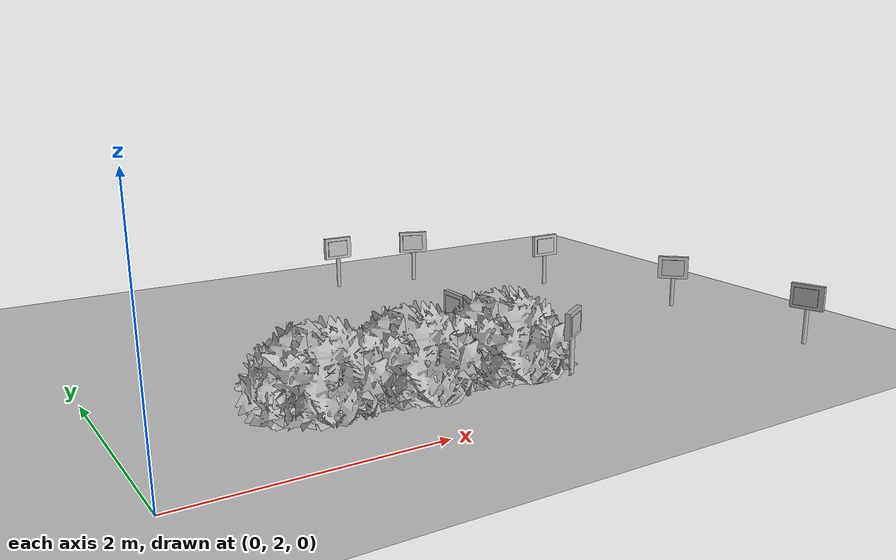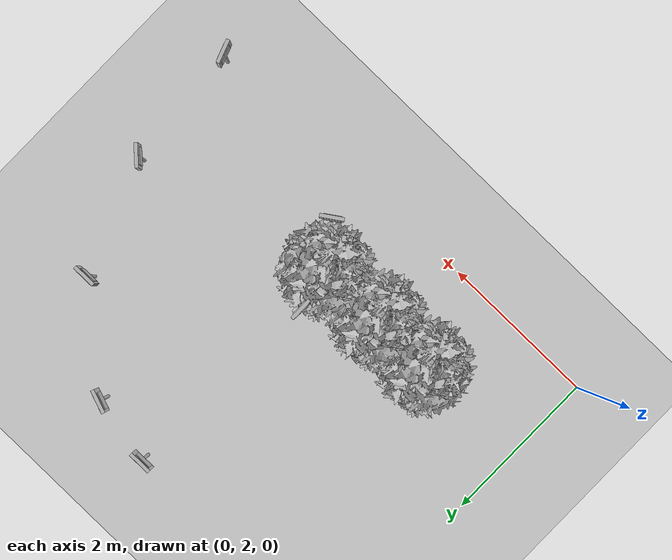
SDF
<sdf version="1.7">
 <world name="default">
  <model name="ground_plane">
   <static>1</static>
   <link name="link">
    <collision name="collision">
     <geometry><plane><normal>0 0 1</normal><size>100 100</size></plane></geometry>
     <surface>
      <contact><collide_bitmask>65535</collide_bitmask></contact>
      <friction><ode><mu>100</mu><mu2>50</mu2></ode></friction>
     </surface>
    </collision>
    <visual name="visual">
     <cast_shadows>0</cast_shadows>
     <geometry><plane><normal>0 0 1</normal><size>100 100</size></plane></geometry>
     <material>
      <script><uri>file://media/materials/scripts/gazebo.material</uri><name>Gazebo/Grey</name></script>
     </material>
    </visual>
   </link>
  </model>
  <model name="abbfre_6">
   <link name="link_0">
    <inertial>
     <mass>1</mass>
     <inertia>
      <ixx>0.166667</ixx>
      <ixy>0</ixy>
      <ixz>0</ixz>
      <iyy>0.166667</iyy>
      <iyz>0</iyz>
      <izz>0.166667</izz>
     </inertia>
    </inertial>
    <pose>0 0 -0 1.60917 -0 0</pose>
    <visual name="visual">
     <geometry><mesh><uri>model://abbfre/meshes/arbufres.obj</uri><scale>1 1 1</scale></mesh></geometry>
    </visual>
    <collision name="collision">
     <geometry><mesh><uri>model://abbfre/meshes/arbufres.obj</uri><scale>1 1 1</scale></mesh></geometry>
     <surface>
      <friction>
       <ode><mu>1</mu><mu2>1</mu2><fdir1>0 0 0</fdir1><slip1>0</slip1><slip2>0</slip2></ode>
       <torsional>
        <coefficient>1</coefficient>
        <patch_radius>0</patch_radius>
        <surface_radius>0</surface_radius>
        <use_patch_radius>1</use_patch_radius>
        <ode><slip>0</slip></ode>
       </torsional>
      </friction>
      <bounce><restitution_coefficient>0</restitution_coefficient><threshold>1e+06</threshold></bounce>
      <contact>
       <collide_without_contact>0</collide_without_contact>
       <collide_without_contact_bitmask>1</collide_without_contact_bitmask>
       <collide_bitmask>1</collide_bitmask>
       <ode>
        <soft_cfm>0</soft_cfm>
        <soft_erp>0.2</soft_erp>
        <kp>1e+13</kp>
        <kd>1</kd>
        <max_vel>0.01</max_vel>
        <min_depth>0</min_depth>
       </ode>
       <bullet>
        <split_impulse>1</split_impulse>
        <split_impulse_penetration_threshold>-0.01</split_impulse_penetration_threshold>
        <soft_cfm>0</soft_cfm>
        <soft_erp>0.2</soft_erp>
        <kp>1e+13</kp>
        <kd>1</kd>
       </bullet>
      </contact>
     </surface>
    </collision>
   </link>
   <static>1</static>
   <pose>2.3443 3.2131 0 0 -0 0</pose>
  </model>
  <model name="letrero_riego_II_0">
   <link name="link_0">
    <inertial>
     <mass>0.0543151</mass>
     <inertia>
      <ixx>4.90351e-06</ixx>
      <ixy>0</ixy>
      <ixz>0</ixz>
      <iyy>4.90351e-06</iyy>
      <iyz>0</iyz>
      <izz>1.12837e-07</izz>
     </inertia>
    </inertial>
    <pose>0.002515 0.005109 0.153562 0 -0 0</pose>
    <visual name="visual">
     <geometry><cylinder><radius>0.0203836</radius><length>0.327243</length></cylinder></geometry>
     <material>
      <lighting>1</lighting>
      <script>
       <uri>model://letrero_riego_II/madera/scripts</uri>
       <uri>model://letrero_riego_II/madera/textures</uri>
       <name>textur/madera</name>
      </script>
      <shader type="pixel"/>
      <emissive>0 0 0 1</emissive>
     </material>
    </visual>
    <collision name="collision">
     <geometry><cylinder><radius>0.020384</radius><length>0.327243</length></cylinder></geometry>
     <surface>
      <friction>
       <ode><mu>1</mu><mu2>1</mu2><fdir1>0 0 0</fdir1><slip1>0</slip1><slip2>0</slip2></ode>
       <torsional>
        <coefficient>1</coefficient>
        <patch_radius>0</patch_radius>
        <surface_radius>0</surface_radius>
        <use_patch_radius>1</use_patch_radius>
        <ode><slip>0</slip></ode>
       </torsional>
      </friction>
      <bounce><restitution_coefficient>0</restitution_coefficient><threshold>1e+06</threshold></bounce>
      <contact>
       <collide_without_contact>0</collide_without_contact>
       <collide_without_contact_bitmask>1</collide_without_contact_bitmask>
       <collide_bitmask>1</collide_bitmask>
       <ode>
        <soft_cfm>0</soft_cfm>
        <soft_erp>0.2</soft_erp>
        <kp>1e+13</kp>
        <kd>1</kd>
        <max_vel>0.01</max_vel>
        <min_depth>0</min_depth>
       </ode>
       <bullet>
        <split_impulse>1</split_impulse>
        <split_impulse_penetration_threshold>-0.01</split_impulse_penetration_threshold>
        <soft_cfm>0</soft_cfm>
        <soft_erp>0.2</soft_erp>
        <kp>1e+13</kp>
        <kd>1</kd>
       </bullet>
      </contact>
     </surface>
    </collision>
   </link>
   <link name="link_1">
    <inertial>
     <mass>0.00299633</mass>
     <inertia>
      <ixx>1.27855e-05</ixx>
      <ixy>0</ixy>
      <ixz>0</ixz>
      <iyy>3.42923e-05</iyy>
      <iyz>0</iyz>
      <izz>2.25402e-05</izz>
     </inertia>
    </inertial>
    <pose>-0.001542 0.002452 0.422031 0 -0 0</pose>
    <visual name="visual">
     <geometry><box><size>0.296988 0.04549 0.221665</size></box></geometry>
     <material>
      <lighting>1</lighting>
      <script>
       <uri>model://letrero_riego_II/madera/scripts</uri>
       <uri>model://letrero_riego_II/madera/textures</uri>
       <name>textur/madera</name>
      </script>
      <shader type="pixel"/>
      <emissive>0 0 0 1</emissive>
     </material>
    </visual>
    <collision name="collision">
     <geometry><box><size>0.296988 0.04549 0.221665</size></box></geometry>
     <surface>
      <friction>
       <ode><mu>1</mu><mu2>1</mu2><fdir1>0 0 0</fdir1><slip1>0</slip1><slip2>0</slip2></ode>
       <torsional>
        <coefficient>1</coefficient>
        <patch_radius>0</patch_radius>
        <surface_radius>0</surface_radius>
        <use_patch_radius>1</use_patch_radius>
        <ode><slip>0</slip></ode>
       </torsional>
      </friction>
      <bounce><restitution_coefficient>0</restitution_coefficient><threshold>1e+06</threshold></bounce>
      <contact>
       <collide_without_contact>0</collide_without_contact>
       <collide_without_contact_bitmask>1</collide_without_contact_bitmask>
       <collide_bitmask>1</collide_bitmask>
       <ode>
        <soft_cfm>0</soft_cfm>
        <soft_erp>0.2</soft_erp>
        <kp>1e+13</kp>
        <kd>1</kd>
        <max_vel>0.01</max_vel>
        <min_depth>0</min_depth>
       </ode>
       <bullet>
        <split_impulse>1</split_impulse>
        <split_impulse_penetration_threshold>-0.01</split_impulse_penetration_threshold>
        <soft_cfm>0</soft_cfm>
        <soft_erp>0.2</soft_erp>
        <kp>1e+13</kp>
        <kd>1</kd>
       </bullet>
      </contact>
     </surface>
    </collision>
   </link>
   <link name="link_2">
    <inertial>
     <mass>0.00173577</mass>
     <inertia>
      <ixx>4.23206e-06</ixx>
      <ixy>0</ixy>
      <ixz>0</ixz>
      <iyy>1.03921e-05</iyy>
      <iyz>0</iyz>
      <izz>7.37287e-06</izz>
     </inertia>
    </inertial>
    <pose>-0.010225 0.002657 0.421501 0 -0 0</pose>
    <visual name="visual">
     <geometry><box><size>0.216284 0.064749 0.15832</size></box></geometry>
     <material>
      <lighting>1</lighting>
      <script>
       <uri>model://letrero_riego_II/materials/scripts</uri>
       <uri>model://letrero_riego_II/materials/textures</uri>
       <name>textur/sisrie</name>
      </script>
      <shader type="pixel"/>
      <emissive>0 0 0 1</emissive>
     </material>
    </visual>
    <collision name="collision">
     <geometry><box><size>0.216284 0.064749 0.15832</size></box></geometry>
     <surface>
      <friction>
       <ode><mu>1</mu><mu2>1</mu2><fdir1>0 0 0</fdir1><slip1>0</slip1><slip2>0</slip2></ode>
       <torsional>
        <coefficient>1</coefficient>
        <patch_radius>0</patch_radius>
        <surface_radius>0</surface_radius>
        <use_patch_radius>1</use_patch_radius>
        <ode><slip>0</slip></ode>
       </torsional>
      </friction>
      <bounce><restitution_coefficient>0</restitution_coefficient><threshold>1e+06</threshold></bounce>
      <contact>
       <collide_without_contact>0</collide_without_contact>
       <collide_without_contact_bitmask>1</collide_without_contact_bitmask>
       <collide_bitmask>1</collide_bitmask>
       <ode>
        <soft_cfm>0</soft_cfm>
        <soft_erp>0.2</soft_erp>
        <kp>1e+13</kp>
        <kd>1</kd>
        <max_vel>0.01</max_vel>
        <min_depth>0</min_depth>
       </ode>
       <bullet>
        <split_impulse>1</split_impulse>
        <split_impulse_penetration_threshold>-0.01</split_impulse_penetration_threshold>
        <soft_cfm>0</soft_cfm>
        <soft_erp>0.2</soft_erp>
        <kp>1e+13</kp>
        <kd>1</kd>
       </bullet>
      </contact>
     </surface>
    </collision>
   </link>
   <joint name="link_0_JOINT_1" type="fixed">
    <parent>link_0</parent>
    <child>link_1</child>
    <physics>
     <ode><limit><cfm>0</cfm><erp>0.2</erp></limit><suspension><cfm>0</cfm><erp>0.2</erp></suspension></ode>
    </physics>
   </joint>
   <joint name="link_0_JOINT_2" type="fixed">
    <parent>link_0</parent>
    <child>link_2</child>
    <physics>
     <ode><limit><cfm>0</cfm><erp>0.2</erp></limit><suspension><cfm>0</cfm><erp>0.2</erp></suspension></ode>
    </physics>
   </joint>
   <static>1</static>
   <pose>3.53509 2.61396 0 0 -0 0.590552</pose>
  </model>
  <model name="letrero_cheems">
   <link name="link_0">
    <inertial>
     <mass>0.00543151</mass>
     <inertia>
      <ixx>4.90351e-06</ixx>
      <ixy>0</ixy>
      <ixz>0</ixz>
      <iyy>4.90351e-06</iyy>
      <iyz>0</iyz>
      <izz>1.12837e-07</izz>
     </inertia>
    </inertial>
    <pose>0.002372 -0.000902 -0.178803 0 -0 0</pose>
    <visual name="visual">
     <geometry><cylinder><radius>0.0203836</radius><length>0.327243</length></cylinder></geometry>
     <material>
      <lighting>1</lighting>
      <script>
       <uri>model://letrero_cheems/madera/scripts</uri>
       <uri>model://letrero_cheems/madera/textures</uri>
       <name>textur/madera</name>
      </script>
      <shader type="pixel"/>
      <emissive>0 0 0 1</emissive>
     </material>
    </visual>
    <collision name="collision">
     <geometry><cylinder><radius>0.020384</radius><length>0.327243</length></cylinder></geometry>
     <surface>
      <friction>
       <ode><mu>1</mu><mu2>1</mu2><fdir1>0 0 0</fdir1><slip1>0</slip1><slip2>0</slip2></ode>
       <torsional>
        <coefficient>1</coefficient>
        <patch_radius>0</patch_radius>
        <surface_radius>0</surface_radius>
        <use_patch_radius>1</use_patch_radius>
        <ode><slip>0</slip></ode>
       </torsional>
      </friction>
      <bounce><restitution_coefficient>0</restitution_coefficient><threshold>1e+06</threshold></bounce>
      <contact>
       <collide_without_contact>0</collide_without_contact>
       <collide_without_contact_bitmask>1</collide_without_contact_bitmask>
       <collide_bitmask>1</collide_bitmask>
       <ode>
        <soft_cfm>0</soft_cfm>
        <soft_erp>0.2</soft_erp>
        <kp>1e+13</kp>
        <kd>1</kd>
        <max_vel>0.01</max_vel>
        <min_depth>0</min_depth>
       </ode>
       <bullet>
        <split_impulse>1</split_impulse>
        <split_impulse_penetration_threshold>-0.01</split_impulse_penetration_threshold>
        <soft_cfm>0</soft_cfm>
        <soft_erp>0.2</soft_erp>
        <kp>1e+13</kp>
        <kd>1</kd>
       </bullet>
      </contact>
     </surface>
    </collision>
   </link>
   <link name="link_1">
    <inertial>
     <mass>0.00299633</mass>
     <inertia>
      <ixx>1.27855e-05</ixx>
      <ixy>0</ixy>
      <ixz>0</ixz>
      <iyy>3.42923e-05</iyy>
      <iyz>0</iyz>
      <izz>2.25402e-05</izz>
     </inertia>
    </inertial>
    <pose>-0.001685 -0.003559 0.089666 0 -0 0</pose>
    <visual name="visual">
     <geometry><box><size>0.296988 0.04549 0.221665</size></box></geometry>
     <material>
      <lighting>1</lighting>
      <script>
       <uri>model://letrero_cheems/madera/scripts</uri>
       <uri>model://letrero_cheems/madera/textures</uri>
       <name>textur/madera</name>
      </script>
      <shader type="pixel"/>
      <emissive>0 0 0 1</emissive>
     </material>
    </visual>
    <collision name="collision">
     <geometry><box><size>0.296988 0.04549 0.221665</size></box></geometry>
     <surface>
      <friction>
       <ode><mu>1</mu><mu2>1</mu2><fdir1>0 0 0</fdir1><slip1>0</slip1><slip2>0</slip2></ode>
       <torsional>
        <coefficient>1</coefficient>
        <patch_radius>0</patch_radius>
        <surface_radius>0</surface_radius>
        <use_patch_radius>1</use_patch_radius>
        <ode><slip>0</slip></ode>
       </torsional>
      </friction>
      <bounce><restitution_coefficient>0</restitution_coefficient><threshold>1e+06</threshold></bounce>
      <contact>
       <collide_without_contact>0</collide_without_contact>
       <collide_without_contact_bitmask>1</collide_without_contact_bitmask>
       <collide_bitmask>1</collide_bitmask>
       <ode>
        <soft_cfm>0</soft_cfm>
        <soft_erp>0.2</soft_erp>
        <kp>1e+13</kp>
        <kd>1</kd>
        <max_vel>0.01</max_vel>
        <min_depth>0</min_depth>
       </ode>
       <bullet>
        <split_impulse>1</split_impulse>
        <split_impulse_penetration_threshold>-0.01</split_impulse_penetration_threshold>
        <soft_cfm>0</soft_cfm>
        <soft_erp>0.2</soft_erp>
        <kp>1e+13</kp>
        <kd>1</kd>
       </bullet>
      </contact>
     </surface>
    </collision>
   </link>
   <link name="link_2">
    <inertial>
     <mass>0.00219695</mass>
     <inertia>
      <ixx>5.34209e-06</ixx>
      <ixy>0</ixy>
      <ixz>0</ixz>
      <iyy>1.31531e-05</iyy>
      <iyz>0</iyz>
      <izz>9.31738e-06</izz>
     </inertia>
    </inertial>
    <pose>-0.001275 -0.005928 0.089136 0 -0 0</pose>
    <visual name="visual">
     <geometry><box><size>0.216284 0.06414 0.15832</size></box></geometry>
     <material>
      <lighting>1</lighting>
      <script>
       <uri>model://letrero_cheems/materials/scripts</uri>
       <uri>model://letrero_cheems/materials/textures</uri>
       <name>textur/cheems</name>
      </script>
      <shader type="pixel"/>
      <emissive>0 0 0 1</emissive>
     </material>
    </visual>
    <collision name="collision">
     <geometry><box><size>0.216284 0.06414 0.15832</size></box></geometry>
     <surface>
      <friction>
       <ode><mu>1</mu><mu2>1</mu2><fdir1>0 0 0</fdir1><slip1>0</slip1><slip2>0</slip2></ode>
       <torsional>
        <coefficient>1</coefficient>
        <patch_radius>0</patch_radius>
        <surface_radius>0</surface_radius>
        <use_patch_radius>1</use_patch_radius>
        <ode><slip>0</slip></ode>
       </torsional>
      </friction>
      <bounce><restitution_coefficient>0</restitution_coefficient><threshold>1e+06</threshold></bounce>
      <contact>
       <collide_without_contact>0</collide_without_contact>
       <collide_without_contact_bitmask>1</collide_without_contact_bitmask>
       <collide_bitmask>1</collide_bitmask>
       <ode>
        <soft_cfm>0</soft_cfm>
        <soft_erp>0.2</soft_erp>
        <kp>1e+13</kp>
        <kd>1</kd>
        <max_vel>0.01</max_vel>
        <min_depth>0</min_depth>
       </ode>
       <bullet>
        <split_impulse>1</split_impulse>
        <split_impulse_penetration_threshold>-0.01</split_impulse_penetration_threshold>
        <soft_cfm>0</soft_cfm>
        <soft_erp>0.2</soft_erp>
        <kp>1e+13</kp>
        <kd>1</kd>
       </bullet>
      </contact>
     </surface>
    </collision>
   </link>
   <joint name="link_0_JOINT_1" type="fixed">
    <parent>link_0</parent>
    <child>link_1</child>
    <physics>
     <ode><limit><cfm>0</cfm><erp>0.2</erp></limit><suspension><cfm>0</cfm><erp>0.2</erp></suspension></ode>
    </physics>
   </joint>
   <joint name="link_0_JOINT_2" type="fixed">
    <parent>link_0</parent>
    <child>link_2</child>
    <physics>
     <ode><limit><cfm>0</cfm><erp>0.2</erp></limit><suspension><cfm>0</cfm><erp>0.2</erp></suspension></ode>
    </physics>
   </joint>
   <static>1</static>
   <pose>5.66596 3.67627 0.298605 -0.001182 -0.001125 -0.761042</pose>
  </model>
  <model name="letrero_riego_II">
   <link name="link_0">
    <inertial>
     <mass>0.0543151</mass>
     <inertia>
      <ixx>4.90351e-06</ixx>
      <ixy>0</ixy>
      <ixz>0</ixz>
      <iyy>4.90351e-06</iyy>
      <iyz>0</iyz>
      <izz>1.12837e-07</izz>
     </inertia>
    </inertial>
    <pose>0.002515 0.005109 0.153562 0 -0 0</pose>
    <visual name="visual">
     <geometry><cylinder><radius>0.0203836</radius><length>0.327243</length></cylinder></geometry>
     <material>
      <lighting>1</lighting>
      <script>
       <uri>model://letrero_riego_II/madera/scripts</uri>
       <uri>model://letrero_riego_II/madera/textures</uri>
       <name>textur/madera</name>
      </script>
      <shader type="pixel"/>
      <emissive>0 0 0 1</emissive>
     </material>
    </visual>
    <collision name="collision">
     <geometry><cylinder><radius>0.020384</radius><length>0.327243</length></cylinder></geometry>
     <surface>
      <friction>
       <ode><mu>1</mu><mu2>1</mu2><fdir1>0 0 0</fdir1><slip1>0</slip1><slip2>0</slip2></ode>
       <torsional>
        <coefficient>1</coefficient>
        <patch_radius>0</patch_radius>
        <surface_radius>0</surface_radius>
        <use_patch_radius>1</use_patch_radius>
        <ode><slip>0</slip></ode>
       </torsional>
      </friction>
      <bounce><restitution_coefficient>0</restitution_coefficient><threshold>1e+06</threshold></bounce>
      <contact>
       <collide_without_contact>0</collide_without_contact>
       <collide_without_contact_bitmask>1</collide_without_contact_bitmask>
       <collide_bitmask>1</collide_bitmask>
       <ode>
        <soft_cfm>0</soft_cfm>
        <soft_erp>0.2</soft_erp>
        <kp>1e+13</kp>
        <kd>1</kd>
        <max_vel>0.01</max_vel>
        <min_depth>0</min_depth>
       </ode>
       <bullet>
        <split_impulse>1</split_impulse>
        <split_impulse_penetration_threshold>-0.01</split_impulse_penetration_threshold>
        <soft_cfm>0</soft_cfm>
        <soft_erp>0.2</soft_erp>
        <kp>1e+13</kp>
        <kd>1</kd>
       </bullet>
      </contact>
     </surface>
    </collision>
   </link>
   <link name="link_1">
    <inertial>
     <mass>0.00299633</mass>
     <inertia>
      <ixx>1.27855e-05</ixx>
      <ixy>0</ixy>
      <ixz>0</ixz>
      <iyy>3.42923e-05</iyy>
      <iyz>0</iyz>
      <izz>2.25402e-05</izz>
     </inertia>
    </inertial>
    <pose>-0.001542 0.002452 0.422031 0 -0 0</pose>
    <visual name="visual">
     <geometry><box><size>0.296988 0.04549 0.221665</size></box></geometry>
     <material>
      <lighting>1</lighting>
      <script>
       <uri>model://letrero_riego_II/madera/scripts</uri>
       <uri>model://letrero_riego_II/madera/textures</uri>
       <name>textur/madera</name>
      </script>
      <shader type="pixel"/>
      <emissive>0 0 0 1</emissive>
     </material>
    </visual>
    <collision name="collision">
     <geometry><box><size>0.296988 0.04549 0.221665</size></box></geometry>
     <surface>
      <friction>
       <ode><mu>1</mu><mu2>1</mu2><fdir1>0 0 0</fdir1><slip1>0</slip1><slip2>0</slip2></ode>
       <torsional>
        <coefficient>1</coefficient>
        <patch_radius>0</patch_radius>
        <surface_radius>0</surface_radius>
        <use_patch_radius>1</use_patch_radius>
        <ode><slip>0</slip></ode>
       </torsional>
      </friction>
      <bounce><restitution_coefficient>0</restitution_coefficient><threshold>1e+06</threshold></bounce>
      <contact>
       <collide_without_contact>0</collide_without_contact>
       <collide_without_contact_bitmask>1</collide_without_contact_bitmask>
       <collide_bitmask>1</collide_bitmask>
       <ode>
        <soft_cfm>0</soft_cfm>
        <soft_erp>0.2</soft_erp>
        <kp>1e+13</kp>
        <kd>1</kd>
        <max_vel>0.01</max_vel>
        <min_depth>0</min_depth>
       </ode>
       <bullet>
        <split_impulse>1</split_impulse>
        <split_impulse_penetration_threshold>-0.01</split_impulse_penetration_threshold>
        <soft_cfm>0</soft_cfm>
        <soft_erp>0.2</soft_erp>
        <kp>1e+13</kp>
        <kd>1</kd>
       </bullet>
      </contact>
     </surface>
    </collision>
   </link>
   <link name="link_2">
    <inertial>
     <mass>0.00173577</mass>
     <inertia>
      <ixx>4.23206e-06</ixx>
      <ixy>0</ixy>
      <ixz>0</ixz>
      <iyy>1.03921e-05</iyy>
      <iyz>0</iyz>
      <izz>7.37287e-06</izz>
     </inertia>
    </inertial>
    <pose>-0.010225 0.002657 0.421501 0 -0 0</pose>
    <visual name="visual">
     <geometry><box><size>0.216284 0.064749 0.15832</size></box></geometry>
     <material>
      <lighting>1</lighting>
      <script>
       <uri>model://letrero_riego_II/materials/scripts</uri>
       <uri>model://letrero_riego_II/materials/textures</uri>
       <name>textur/sisrie</name>
      </script>
      <shader type="pixel"/>
      <emissive>0 0 0 1</emissive>
     </material>
    </visual>
    <collision name="collision">
     <geometry><box><size>0.216284 0.064749 0.15832</size></box></geometry>
     <surface>
      <friction>
       <ode><mu>1</mu><mu2>1</mu2><fdir1>0 0 0</fdir1><slip1>0</slip1><slip2>0</slip2></ode>
       <torsional>
        <coefficient>1</coefficient>
        <patch_radius>0</patch_radius>
        <surface_radius>0</surface_radius>
        <use_patch_radius>1</use_patch_radius>
        <ode><slip>0</slip></ode>
       </torsional>
      </friction>
      <bounce><restitution_coefficient>0</restitution_coefficient><threshold>1e+06</threshold></bounce>
      <contact>
       <collide_without_contact>0</collide_without_contact>
       <collide_without_contact_bitmask>1</collide_without_contact_bitmask>
       <collide_bitmask>1</collide_bitmask>
       <ode>
        <soft_cfm>0</soft_cfm>
        <soft_erp>0.2</soft_erp>
        <kp>1e+13</kp>
        <kd>1</kd>
        <max_vel>0.01</max_vel>
        <min_depth>0</min_depth>
       </ode>
       <bullet>
        <split_impulse>1</split_impulse>
        <split_impulse_penetration_threshold>-0.01</split_impulse_penetration_threshold>
        <soft_cfm>0</soft_cfm>
        <soft_erp>0.2</soft_erp>
        <kp>1e+13</kp>
        <kd>1</kd>
       </bullet>
      </contact>
     </surface>
    </collision>
   </link>
   <joint name="link_0_JOINT_1" type="fixed">
    <parent>link_0</parent>
    <child>link_1</child>
    <physics>
     <ode><limit><cfm>0</cfm><erp>0.2</erp></limit><suspension><cfm>0</cfm><erp>0.2</erp></suspension></ode>
    </physics>
   </joint>
   <joint name="link_0_JOINT_2" type="fixed">
    <parent>link_0</parent>
    <child>link_2</child>
    <physics>
     <ode><limit><cfm>0</cfm><erp>0.2</erp></limit><suspension><cfm>0</cfm><erp>0.2</erp></suspension></ode>
    </physics>
   </joint>
   <static>1</static>
   <pose>5.11582 5.08948 0 0 -0 0</pose>
  </model>
  <model name="letrero_riego_0">
   <link name="link_0">
    <inertial>
     <mass>0.0543151</mass>
     <inertia>
      <ixx>4.90351e-06</ixx>
      <ixy>0</ixy>
      <ixz>0</ixz>
      <iyy>4.90351e-06</iyy>
      <iyz>0</iyz>
      <izz>1.12837e-07</izz>
     </inertia>
    </inertial>
    <pose>0.002515 0.005109 0.153562 0 -0 0</pose>
    <visual name="visual">
     <geometry><cylinder><radius>0.0203836</radius><length>0.327243</length></cylinder></geometry>
     <material>
      <lighting>1</lighting>
      <script>
       <uri>model://letrero_riego/madera/scripts</uri>
       <uri>model://letrero_riego/madera/textures</uri>
       <name>textur/madera</name>
      </script>
      <shader type="pixel"/>
      <emissive>0 0 0 1</emissive>
     </material>
    </visual>
    <collision name="collision">
     <geometry><cylinder><radius>0.020384</radius><length>0.327243</length></cylinder></geometry>
     <surface>
      <friction>
       <ode><mu>1</mu><mu2>1</mu2><fdir1>0 0 0</fdir1><slip1>0</slip1><slip2>0</slip2></ode>
       <torsional>
        <coefficient>1</coefficient>
        <patch_radius>0</patch_radius>
        <surface_radius>0</surface_radius>
        <use_patch_radius>1</use_patch_radius>
        <ode><slip>0</slip></ode>
       </torsional>
      </friction>
      <bounce><restitution_coefficient>0</restitution_coefficient><threshold>1e+06</threshold></bounce>
      <contact>
       <collide_without_contact>0</collide_without_contact>
       <collide_without_contact_bitmask>1</collide_without_contact_bitmask>
       <collide_bitmask>1</collide_bitmask>
       <ode>
        <soft_cfm>0</soft_cfm>
        <soft_erp>0.2</soft_erp>
        <kp>1e+13</kp>
        <kd>1</kd>
        <max_vel>0.01</max_vel>
        <min_depth>0</min_depth>
       </ode>
       <bullet>
        <split_impulse>1</split_impulse>
        <split_impulse_penetration_threshold>-0.01</split_impulse_penetration_threshold>
        <soft_cfm>0</soft_cfm>
        <soft_erp>0.2</soft_erp>
        <kp>1e+13</kp>
        <kd>1</kd>
       </bullet>
      </contact>
     </surface>
    </collision>
   </link>
   <link name="link_1">
    <inertial>
     <mass>0.00299633</mass>
     <inertia>
      <ixx>1.27855e-05</ixx>
      <ixy>0</ixy>
      <ixz>0</ixz>
      <iyy>3.42923e-05</iyy>
      <iyz>0</iyz>
      <izz>2.25402e-05</izz>
     </inertia>
    </inertial>
    <pose>-0.001542 0.002452 0.422031 0 -0 0</pose>
    <visual name="visual">
     <geometry><box><size>0.296988 0.04549 0.221665</size></box></geometry>
     <material>
      <lighting>1</lighting>
      <script>
       <uri>model://letrero_riego/madera/scripts</uri>
       <uri>model://letrero_riego/madera/textures</uri>
       <name>textur/madera</name>
      </script>
      <shader type="pixel"/>
      <emissive>0 0 0 1</emissive>
     </material>
    </visual>
    <collision name="collision">
     <geometry><box><size>0.296988 0.04549 0.221665</size></box></geometry>
     <surface>
      <friction>
       <ode><mu>1</mu><mu2>1</mu2><fdir1>0 0 0</fdir1><slip1>0</slip1><slip2>0</slip2></ode>
       <torsional>
        <coefficient>1</coefficient>
        <patch_radius>0</patch_radius>
        <surface_radius>0</surface_radius>
        <use_patch_radius>1</use_patch_radius>
        <ode><slip>0</slip></ode>
       </torsional>
      </friction>
      <bounce><restitution_coefficient>0</restitution_coefficient><threshold>1e+06</threshold></bounce>
      <contact>
       <collide_without_contact>0</collide_without_contact>
       <collide_without_contact_bitmask>1</collide_without_contact_bitmask>
       <collide_bitmask>1</collide_bitmask>
       <ode>
        <soft_cfm>0</soft_cfm>
        <soft_erp>0.2</soft_erp>
        <kp>1e+13</kp>
        <kd>1</kd>
        <max_vel>0.01</max_vel>
        <min_depth>0</min_depth>
       </ode>
       <bullet>
        <split_impulse>1</split_impulse>
        <split_impulse_penetration_threshold>-0.01</split_impulse_penetration_threshold>
        <soft_cfm>0</soft_cfm>
        <soft_erp>0.2</soft_erp>
        <kp>1e+13</kp>
        <kd>1</kd>
       </bullet>
      </contact>
     </surface>
    </collision>
   </link>
   <link name="link_2">
    <inertial>
     <mass>0.00173577</mass>
     <inertia>
      <ixx>4.23206e-06</ixx>
      <ixy>0</ixy>
      <ixz>0</ixz>
      <iyy>1.03921e-05</iyy>
      <iyz>0</iyz>
      <izz>7.37287e-06</izz>
     </inertia>
    </inertial>
    <pose>-0.010225 0.002657 0.421501 0 -0 0</pose>
    <visual name="visual">
     <geometry><box><size>0.216284 0.064749 0.15832</size></box></geometry>
     <material>
      <lighting>1</lighting>
      <script>
       <uri>model://letrero_riego/materials/scripts</uri>
       <uri>model://letrero_riego/materials/textures</uri>
       <name>textur/riego</name>
      </script>
      <shader type="pixel"/>
      <emissive>0 0 0 1</emissive>
     </material>
    </visual>
    <collision name="collision">
     <geometry><box><size>0.216284 0.064749 0.15832</size></box></geometry>
     <surface>
      <friction>
       <ode><mu>1</mu><mu2>1</mu2><fdir1>0 0 0</fdir1><slip1>0</slip1><slip2>0</slip2></ode>
       <torsional>
        <coefficient>1</coefficient>
        <patch_radius>0</patch_radius>
        <surface_radius>0</surface_radius>
        <use_patch_radius>1</use_patch_radius>
        <ode><slip>0</slip></ode>
       </torsional>
      </friction>
      <bounce><restitution_coefficient>0</restitution_coefficient><threshold>1e+06</threshold></bounce>
      <contact>
       <collide_without_contact>0</collide_without_contact>
       <collide_without_contact_bitmask>1</collide_without_contact_bitmask>
       <collide_bitmask>1</collide_bitmask>
       <ode>
        <soft_cfm>0</soft_cfm>
        <soft_erp>0.2</soft_erp>
        <kp>1e+13</kp>
        <kd>1</kd>
        <max_vel>0.01</max_vel>
        <min_depth>0</min_depth>
       </ode>
       <bullet>
        <split_impulse>1</split_impulse>
        <split_impulse_penetration_threshold>-0.01</split_impulse_penetration_threshold>
        <soft_cfm>0</soft_cfm>
        <soft_erp>0.2</soft_erp>
        <kp>1e+13</kp>
        <kd>1</kd>
       </bullet>
      </contact>
     </surface>
    </collision>
   </link>
   <joint name="link_0_JOINT_1" type="fixed">
    <parent>link_0</parent>
    <child>link_1</child>
    <physics>
     <ode><limit><cfm>0</cfm><erp>0.2</erp></limit><suspension><cfm>0</cfm><erp>0.2</erp></suspension></ode>
    </physics>
   </joint>
   <joint name="link_0_JOINT_2" type="fixed">
    <parent>link_0</parent>
    <child>link_2</child>
    <physics>
     <ode><limit><cfm>0</cfm><erp>0.2</erp></limit><suspension><cfm>0</cfm><erp>0.2</erp></suspension></ode>
    </physics>
   </joint>
   <static>1</static>
   <pose>5.76834 2.11439 0 0 0 -1.22534</pose>
  </model>
  <model name="letrero_pajaro_1">
   <link name="link_0">
    <inertial>
     <mass>0.0543151</mass>
     <inertia>
      <ixx>4.90351e-06</ixx>
      <ixy>0</ixy>
      <ixz>0</ixz>
      <iyy>4.90351e-06</iyy>
      <iyz>0</iyz>
      <izz>1.12837e-07</izz>
     </inertia>
    </inertial>
    <pose>0.002515 0.005109 0.153562 0 -0 0</pose>
    <visual name="visual">
     <geometry><cylinder><radius>0.0203836</radius><length>0.327243</length></cylinder></geometry>
     <material>
      <lighting>1</lighting>
      <script>
       <uri>model://letrero_pajaro/madera/scripts</uri>
       <uri>model://letrero_pajaro/madera/textures</uri>
       <name>textur/madera</name>
      </script>
      <shader type="pixel"/>
      <emissive>0 0 0 1</emissive>
     </material>
    </visual>
    <collision name="collision">
     <geometry><cylinder><radius>0.020384</radius><length>0.327243</length></cylinder></geometry>
     <surface>
      <friction>
       <ode><mu>1</mu><mu2>1</mu2><fdir1>0 0 0</fdir1><slip1>0</slip1><slip2>0</slip2></ode>
       <torsional>
        <coefficient>1</coefficient>
        <patch_radius>0</patch_radius>
        <surface_radius>0</surface_radius>
        <use_patch_radius>1</use_patch_radius>
        <ode><slip>0</slip></ode>
       </torsional>
      </friction>
      <bounce><restitution_coefficient>0</restitution_coefficient><threshold>1e+06</threshold></bounce>
      <contact>
       <collide_without_contact>0</collide_without_contact>
       <collide_without_contact_bitmask>1</collide_without_contact_bitmask>
       <collide_bitmask>1</collide_bitmask>
       <ode>
        <soft_cfm>0</soft_cfm>
        <soft_erp>0.2</soft_erp>
        <kp>1e+13</kp>
        <kd>1</kd>
        <max_vel>0.01</max_vel>
        <min_depth>0</min_depth>
       </ode>
       <bullet>
        <split_impulse>1</split_impulse>
        <split_impulse_penetration_threshold>-0.01</split_impulse_penetration_threshold>
        <soft_cfm>0</soft_cfm>
        <soft_erp>0.2</soft_erp>
        <kp>1e+13</kp>
        <kd>1</kd>
       </bullet>
      </contact>
     </surface>
    </collision>
   </link>
   <link name="link_1">
    <inertial>
     <mass>0.00299633</mass>
     <inertia>
      <ixx>1.27855e-05</ixx>
      <ixy>0</ixy>
      <ixz>0</ixz>
      <iyy>3.42923e-05</iyy>
      <iyz>0</iyz>
      <izz>2.25402e-05</izz>
     </inertia>
    </inertial>
    <pose>-0.001542 0.002452 0.422031 0 -0 0</pose>
    <visual name="visual">
     <geometry><box><size>0.296988 0.04549 0.221665</size></box></geometry>
     <material>
      <lighting>1</lighting>
      <script>
       <uri>model://letrero_pajaro/madera/scripts</uri>
       <uri>model://letrero_pajaro/madera/textures</uri>
       <name>textur/madera</name>
      </script>
      <shader type="pixel"/>
      <emissive>0 0 0 1</emissive>
     </material>
    </visual>
    <collision name="collision">
     <geometry><box><size>0.296988 0.04549 0.221665</size></box></geometry>
     <surface>
      <friction>
       <ode><mu>1</mu><mu2>1</mu2><fdir1>0 0 0</fdir1><slip1>0</slip1><slip2>0</slip2></ode>
       <torsional>
        <coefficient>1</coefficient>
        <patch_radius>0</patch_radius>
        <surface_radius>0</surface_radius>
        <use_patch_radius>1</use_patch_radius>
        <ode><slip>0</slip></ode>
       </torsional>
      </friction>
      <bounce><restitution_coefficient>0</restitution_coefficient><threshold>1e+06</threshold></bounce>
      <contact>
       <collide_without_contact>0</collide_without_contact>
       <collide_without_contact_bitmask>1</collide_without_contact_bitmask>
       <collide_bitmask>1</collide_bitmask>
       <ode>
        <soft_cfm>0</soft_cfm>
        <soft_erp>0.2</soft_erp>
        <kp>1e+13</kp>
        <kd>1</kd>
        <max_vel>0.01</max_vel>
        <min_depth>0</min_depth>
       </ode>
       <bullet>
        <split_impulse>1</split_impulse>
        <split_impulse_penetration_threshold>-0.01</split_impulse_penetration_threshold>
        <soft_cfm>0</soft_cfm>
        <soft_erp>0.2</soft_erp>
        <kp>1e+13</kp>
        <kd>1</kd>
       </bullet>
      </contact>
     </surface>
    </collision>
   </link>
   <link name="link_2">
    <inertial>
     <mass>0.00173577</mass>
     <inertia>
      <ixx>4.23206e-06</ixx>
      <ixy>0</ixy>
      <ixz>0</ixz>
      <iyy>1.03921e-05</iyy>
      <iyz>0</iyz>
      <izz>7.37287e-06</izz>
     </inertia>
    </inertial>
    <pose>-0.010225 0.002657 0.421501 0 -0 0</pose>
    <visual name="visual">
     <geometry><box><size>0.216284 0.064749 0.15832</size></box></geometry>
     <material>
      <lighting>1</lighting>
      <script>
       <uri>model://letrero_pajaro/materials/scripts</uri>
       <uri>model://letrero_pajaro/materials/textures</uri>
       <name>textur/paj</name>
      </script>
      <shader type="pixel"/>
      <emissive>0 0 0 1</emissive>
     </material>
    </visual>
    <collision name="collision">
     <geometry><box><size>0.216284 0.064749 0.15832</size></box></geometry>
     <surface>
      <friction>
       <ode><mu>1</mu><mu2>1</mu2><fdir1>0 0 0</fdir1><slip1>0</slip1><slip2>0</slip2></ode>
       <torsional>
        <coefficient>1</coefficient>
        <patch_radius>0</patch_radius>
        <surface_radius>0</surface_radius>
        <use_patch_radius>1</use_patch_radius>
        <ode><slip>0</slip></ode>
       </torsional>
      </friction>
      <bounce><restitution_coefficient>0</restitution_coefficient><threshold>1e+06</threshold></bounce>
      <contact>
       <collide_without_contact>0</collide_without_contact>
       <collide_without_contact_bitmask>1</collide_without_contact_bitmask>
       <collide_bitmask>1</collide_bitmask>
       <ode>
        <soft_cfm>0</soft_cfm>
        <soft_erp>0.2</soft_erp>
        <kp>1e+13</kp>
        <kd>1</kd>
        <max_vel>0.01</max_vel>
        <min_depth>0</min_depth>
       </ode>
       <bullet>
        <split_impulse>1</split_impulse>
        <split_impulse_penetration_threshold>-0.01</split_impulse_penetration_threshold>
        <soft_cfm>0</soft_cfm>
        <soft_erp>0.2</soft_erp>
        <kp>1e+13</kp>
        <kd>1</kd>
       </bullet>
      </contact>
     </surface>
    </collision>
   </link>
   <joint name="link_0_JOINT_1" type="fixed">
    <parent>link_0</parent>
    <child>link_1</child>
    <physics>
     <ode><limit><cfm>0</cfm><erp>0.2</erp></limit><suspension><cfm>0</cfm><erp>0.2</erp></suspension></ode>
    </physics>
   </joint>
   <joint name="link_0_JOINT_2" type="fixed">
    <parent>link_0</parent>
    <child>link_2</child>
    <physics>
     <ode><limit><cfm>0</cfm><erp>0.2</erp></limit><suspension><cfm>0</cfm><erp>0.2</erp></suspension></ode>
    </physics>
   </joint>
   <static>1</static>
   <pose>3.98991 6.02172 0 0 0 -0.351771</pose>
  </model>
  <model name="letrero_chocho_3">
   <link name="link_0">
    <inertial>
     <mass>0.0543151</mass>
     <inertia>
      <ixx>4.90351e-06</ixx>
      <ixy>0</ixy>
      <ixz>0</ixz>
      <iyy>4.90351e-06</iyy>
      <iyz>0</iyz>
      <izz>1.12837e-07</izz>
     </inertia>
    </inertial>
    <pose>0.002515 0.005109 0.153562 0 -0 0</pose>
    <visual name="visual">
     <geometry><cylinder><radius>0.0203836</radius><length>0.327243</length></cylinder></geometry>
     <material>
      <lighting>1</lighting>
      <script>
       <uri>model://letrero_chocho/madera/scripts</uri>
       <uri>model://letrero_chocho/madera/textures</uri>
       <name>textur/madera</name>
      </script>
      <shader type="pixel"/>
      <emissive>0 0 0 1</emissive>
     </material>
    </visual>
    <collision name="collision">
     <geometry><cylinder><radius>0.020384</radius><length>0.327243</length></cylinder></geometry>
     <surface>
      <friction>
       <ode><mu>1</mu><mu2>1</mu2><fdir1>0 0 0</fdir1><slip1>0</slip1><slip2>0</slip2></ode>
       <torsional>
        <coefficient>1</coefficient>
        <patch_radius>0</patch_radius>
        <surface_radius>0</surface_radius>
        <use_patch_radius>1</use_patch_radius>
        <ode><slip>0</slip></ode>
       </torsional>
      </friction>
      <bounce><restitution_coefficient>0</restitution_coefficient><threshold>1e+06</threshold></bounce>
      <contact>
       <collide_without_contact>0</collide_without_contact>
       <collide_without_contact_bitmask>1</collide_without_contact_bitmask>
       <collide_bitmask>1</collide_bitmask>
       <ode>
        <soft_cfm>0</soft_cfm>
        <soft_erp>0.2</soft_erp>
        <kp>1e+13</kp>
        <kd>1</kd>
        <max_vel>0.01</max_vel>
        <min_depth>0</min_depth>
       </ode>
       <bullet>
        <split_impulse>1</split_impulse>
        <split_impulse_penetration_threshold>-0.01</split_impulse_penetration_threshold>
        <soft_cfm>0</soft_cfm>
        <soft_erp>0.2</soft_erp>
        <kp>1e+13</kp>
        <kd>1</kd>
       </bullet>
      </contact>
     </surface>
    </collision>
   </link>
   <link name="link_1">
    <inertial>
     <mass>0.00299633</mass>
     <inertia>
      <ixx>1.27855e-05</ixx>
      <ixy>0</ixy>
      <ixz>0</ixz>
      <iyy>3.42923e-05</iyy>
      <iyz>0</iyz>
      <izz>2.25402e-05</izz>
     </inertia>
    </inertial>
    <pose>-0.001542 0.002452 0.422031 0 -0 0</pose>
    <visual name="visual">
     <geometry><box><size>0.296988 0.04549 0.221665</size></box></geometry>
     <material>
      <lighting>1</lighting>
      <script>
       <uri>model://letrero_chocho/madera/scripts</uri>
       <uri>model://letrero_chocho/madera/textures</uri>
       <name>textur/madera</name>
      </script>
      <shader type="pixel"/>
      <emissive>0 0 0 1</emissive>
     </material>
    </visual>
    <collision name="collision">
     <geometry><box><size>0.296988 0.04549 0.221665</size></box></geometry>
     <surface>
      <friction>
       <ode><mu>1</mu><mu2>1</mu2><fdir1>0 0 0</fdir1><slip1>0</slip1><slip2>0</slip2></ode>
       <torsional>
        <coefficient>1</coefficient>
        <patch_radius>0</patch_radius>
        <surface_radius>0</surface_radius>
        <use_patch_radius>1</use_patch_radius>
        <ode><slip>0</slip></ode>
       </torsional>
      </friction>
      <bounce><restitution_coefficient>0</restitution_coefficient><threshold>1e+06</threshold></bounce>
      <contact>
       <collide_without_contact>0</collide_without_contact>
       <collide_without_contact_bitmask>1</collide_without_contact_bitmask>
       <collide_bitmask>1</collide_bitmask>
       <ode>
        <soft_cfm>0</soft_cfm>
        <soft_erp>0.2</soft_erp>
        <kp>1e+13</kp>
        <kd>1</kd>
        <max_vel>0.01</max_vel>
        <min_depth>0</min_depth>
       </ode>
       <bullet>
        <split_impulse>1</split_impulse>
        <split_impulse_penetration_threshold>-0.01</split_impulse_penetration_threshold>
        <soft_cfm>0</soft_cfm>
        <soft_erp>0.2</soft_erp>
        <kp>1e+13</kp>
        <kd>1</kd>
       </bullet>
      </contact>
     </surface>
    </collision>
   </link>
   <link name="link_2">
    <inertial>
     <mass>0.00173577</mass>
     <inertia>
      <ixx>4.23206e-06</ixx>
      <ixy>0</ixy>
      <ixz>0</ixz>
      <iyy>1.03921e-05</iyy>
      <iyz>0</iyz>
      <izz>7.37287e-06</izz>
     </inertia>
    </inertial>
    <pose>-0.010225 0.002657 0.421501 0 -0 0</pose>
    <visual name="visual">
     <geometry><box><size>0.216284 0.064749 0.15832</size></box></geometry>
     <material>
      <lighting>1</lighting>
      <script>
       <uri>model://letrero_chocho/materials/scripts</uri>
       <uri>model://letrero_chocho/materials/textures</uri>
       <name>textur/cho</name>
      </script>
      <shader type="pixel"/>
      <emissive>0 0 0 1</emissive>
     </material>
    </visual>
    <collision name="collision">
     <geometry><box><size>0.216284 0.064749 0.15832</size></box></geometry>
     <surface>
      <friction>
       <ode><mu>1</mu><mu2>1</mu2><fdir1>0 0 0</fdir1><slip1>0</slip1><slip2>0</slip2></ode>
       <torsional>
        <coefficient>1</coefficient>
        <patch_radius>0</patch_radius>
        <surface_radius>0</surface_radius>
        <use_patch_radius>1</use_patch_radius>
        <ode><slip>0</slip></ode>
       </torsional>
      </friction>
      <bounce><restitution_coefficient>0</restitution_coefficient><threshold>1e+06</threshold></bounce>
      <contact>
       <collide_without_contact>0</collide_without_contact>
       <collide_without_contact_bitmask>1</collide_without_contact_bitmask>
       <collide_bitmask>1</collide_bitmask>
       <ode>
        <soft_cfm>0</soft_cfm>
        <soft_erp>0.2</soft_erp>
        <kp>1e+13</kp>
        <kd>1</kd>
        <max_vel>0.01</max_vel>
        <min_depth>0</min_depth>
       </ode>
       <bullet>
        <split_impulse>1</split_impulse>
        <split_impulse_penetration_threshold>-0.01</split_impulse_penetration_threshold>
        <soft_cfm>0</soft_cfm>
        <soft_erp>0.2</soft_erp>
        <kp>1e+13</kp>
        <kd>1</kd>
       </bullet>
      </contact>
     </surface>
    </collision>
   </link>
   <joint name="link_0_JOINT_1" type="fixed">
    <parent>link_0</parent>
    <child>link_1</child>
    <physics>
     <ode><limit><cfm>0</cfm><erp>0.2</erp></limit><suspension><cfm>0</cfm><erp>0.2</erp></suspension></ode>
    </physics>
   </joint>
   <joint name="link_0_JOINT_2" type="fixed">
    <parent>link_0</parent>
    <child>link_2</child>
    <physics>
     <ode><limit><cfm>0</cfm><erp>0.2</erp></limit><suspension><cfm>0</cfm><erp>0.2</erp></suspension></ode>
    </physics>
   </joint>
   <static>1</static>
   <pose>3.15217 6.19104 0 0 -0 0</pose>
  </model>
  <model name="letrero_fresa_3">
   <link name="link_0">
    <inertial>
     <mass>0.00543151</mass>
     <inertia>
      <ixx>4.90351e-06</ixx>
      <ixy>0</ixy>
      <ixz>0</ixz>
      <iyy>4.90351e-06</iyy>
      <iyz>0</iyz>
      <izz>1.12837e-07</izz>
     </inertia>
    </inertial>
    <pose>0.002372 -0.000902 -0.178803 0 -0 0</pose>
    <visual name="visual">
     <geometry><cylinder><radius>0.0203836</radius><length>0.327243</length></cylinder></geometry>
     <material>
      <lighting>1</lighting>
      <script>
       <uri>model://letrero_fresa/madera/scripts</uri>
       <uri>model://letrero_fresa/madera/textures</uri>
       <name>textur/madera</name>
      </script>
      <shader type="pixel"/>
      <emissive>0 0 0 1</emissive>
     </material>
    </visual>
    <collision name="collision">
     <geometry><cylinder><radius>0.020384</radius><length>0.327243</length></cylinder></geometry>
     <surface>
      <friction>
       <ode><mu>1</mu><mu2>1</mu2><fdir1>0 0 0</fdir1><slip1>0</slip1><slip2>0</slip2></ode>
       <torsional>
        <coefficient>1</coefficient>
        <patch_radius>0</patch_radius>
        <surface_radius>0</surface_radius>
        <use_patch_radius>1</use_patch_radius>
        <ode><slip>0</slip></ode>
       </torsional>
      </friction>
      <bounce><restitution_coefficient>0</restitution_coefficient><threshold>1e+06</threshold></bounce>
      <contact>
       <collide_without_contact>0</collide_without_contact>
       <collide_without_contact_bitmask>1</collide_without_contact_bitmask>
       <collide_bitmask>1</collide_bitmask>
       <ode>
        <soft_cfm>0</soft_cfm>
        <soft_erp>0.2</soft_erp>
        <kp>1e+13</kp>
        <kd>1</kd>
        <max_vel>0.01</max_vel>
        <min_depth>0</min_depth>
       </ode>
       <bullet>
        <split_impulse>1</split_impulse>
        <split_impulse_penetration_threshold>-0.01</split_impulse_penetration_threshold>
        <soft_cfm>0</soft_cfm>
        <soft_erp>0.2</soft_erp>
        <kp>1e+13</kp>
        <kd>1</kd>
       </bullet>
      </contact>
     </surface>
    </collision>
   </link>
   <link name="link_1">
    <inertial>
     <mass>0.00299633</mass>
     <inertia>
      <ixx>1.27855e-05</ixx>
      <ixy>0</ixy>
      <ixz>0</ixz>
      <iyy>3.42923e-05</iyy>
      <iyz>0</iyz>
      <izz>2.25402e-05</izz>
     </inertia>
    </inertial>
    <pose>-0.001685 -0.003559 0.089666 0 -0 0</pose>
    <visual name="visual">
     <geometry><box><size>0.296988 0.04549 0.221665</size></box></geometry>
     <material>
      <lighting>1</lighting>
      <script>
       <uri>model://letrero_fresa/madera/scripts</uri>
       <uri>model://letrero_fresa/madera/textures</uri>
       <name>textur/madera</name>
      </script>
      <shader type="pixel"/>
      <emissive>0 0 0 1</emissive>
     </material>
    </visual>
    <collision name="collision">
     <geometry><box><size>0.296988 0.04549 0.221665</size></box></geometry>
     <surface>
      <friction>
       <ode><mu>1</mu><mu2>1</mu2><fdir1>0 0 0</fdir1><slip1>0</slip1><slip2>0</slip2></ode>
       <torsional>
        <coefficient>1</coefficient>
        <patch_radius>0</patch_radius>
        <surface_radius>0</surface_radius>
        <use_patch_radius>1</use_patch_radius>
        <ode><slip>0</slip></ode>
       </torsional>
      </friction>
      <bounce><restitution_coefficient>0</restitution_coefficient><threshold>1e+06</threshold></bounce>
      <contact>
       <collide_without_contact>0</collide_without_contact>
       <collide_without_contact_bitmask>1</collide_without_contact_bitmask>
       <collide_bitmask>1</collide_bitmask>
       <ode>
        <soft_cfm>0</soft_cfm>
        <soft_erp>0.2</soft_erp>
        <kp>1e+13</kp>
        <kd>1</kd>
        <max_vel>0.01</max_vel>
        <min_depth>0</min_depth>
       </ode>
       <bullet>
        <split_impulse>1</split_impulse>
        <split_impulse_penetration_threshold>-0.01</split_impulse_penetration_threshold>
        <soft_cfm>0</soft_cfm>
        <soft_erp>0.2</soft_erp>
        <kp>1e+13</kp>
        <kd>1</kd>
       </bullet>
      </contact>
     </surface>
    </collision>
   </link>
   <link name="link_2">
    <inertial>
     <mass>0.00219695</mass>
     <inertia>
      <ixx>5.34209e-06</ixx>
      <ixy>0</ixy>
      <ixz>0</ixz>
      <iyy>1.31531e-05</iyy>
      <iyz>0</iyz>
      <izz>9.31738e-06</izz>
     </inertia>
    </inertial>
    <pose>-0.001275 -0.005928 0.089136 0 -0 0</pose>
    <visual name="visual">
     <geometry><box><size>0.216284 0.06414 0.15832</size></box></geometry>
     <material>
      <lighting>1</lighting>
      <script>
       <uri>model://letrero_fresa/materials/scripts</uri>
       <uri>model://letrero_fresa/materials/textures</uri>
       <name>textur/difre</name>
      </script>
      <shader type="pixel"/>
      <emissive>0 0 0 1</emissive>
     </material>
    </visual>
    <collision name="collision">
     <geometry><box><size>0.216284 0.06414 0.15832</size></box></geometry>
     <surface>
      <friction>
       <ode><mu>1</mu><mu2>1</mu2><fdir1>0 0 0</fdir1><slip1>0</slip1><slip2>0</slip2></ode>
       <torsional>
        <coefficient>1</coefficient>
        <patch_radius>0</patch_radius>
        <surface_radius>0</surface_radius>
        <use_patch_radius>1</use_patch_radius>
        <ode><slip>0</slip></ode>
       </torsional>
      </friction>
      <bounce><restitution_coefficient>0</restitution_coefficient><threshold>1e+06</threshold></bounce>
      <contact>
       <collide_without_contact>0</collide_without_contact>
       <collide_without_contact_bitmask>1</collide_without_contact_bitmask>
       <collide_bitmask>1</collide_bitmask>
       <ode>
        <soft_cfm>0</soft_cfm>
        <soft_erp>0.2</soft_erp>
        <kp>1e+13</kp>
        <kd>1</kd>
        <max_vel>0.01</max_vel>
        <min_depth>0</min_depth>
       </ode>
       <bullet>
        <split_impulse>1</split_impulse>
        <split_impulse_penetration_threshold>-0.01</split_impulse_penetration_threshold>
        <soft_cfm>0</soft_cfm>
        <soft_erp>0.2</soft_erp>
        <kp>1e+13</kp>
        <kd>1</kd>
       </bullet>
      </contact>
     </surface>
    </collision>
   </link>
   <joint name="link_0_JOINT_1" type="fixed">
    <parent>link_0</parent>
    <child>link_1</child>
    <physics>
     <ode><limit><cfm>0</cfm><erp>0.2</erp></limit><suspension><cfm>0</cfm><erp>0.2</erp></suspension></ode>
    </physics>
   </joint>
   <joint name="link_0_JOINT_2" type="fixed">
    <parent>link_0</parent>
    <child>link_2</child>
    <physics>
     <ode><limit><cfm>0</cfm><erp>0.2</erp></limit><suspension><cfm>0</cfm><erp>0.2</erp></suspension></ode>
    </physics>
   </joint>
   <static>1</static>
   <pose>3.04705 3.63137 0.309076 0 -0 1.58723</pose>
  </model>
 </world>
</sdf>
